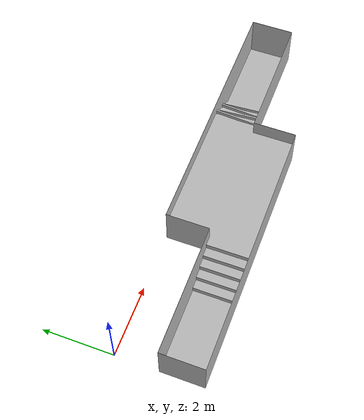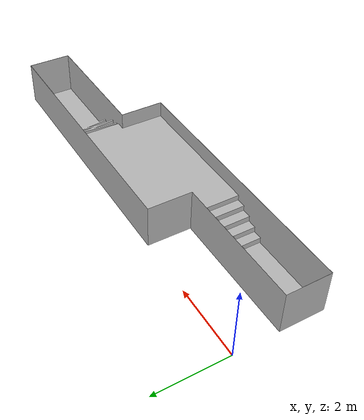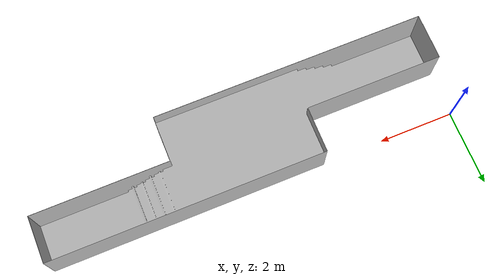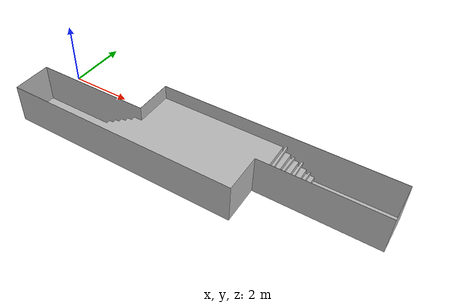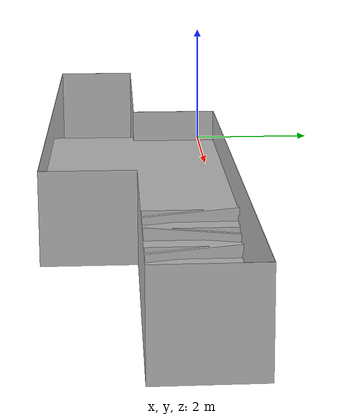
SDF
<?xml version='1.0'?>
<sdf version='1.6'>
    <world name="default">
      <include>
        <uri>model://sun</uri>
      </include>
      <model name="mob1">
      <pose>0 0 0  1.5708 0 0</pose>
      <static>true</static>
      <link name="body">
        <visual name="visual">
          <geometry>
            <mesh>
              <uri>file://mob1.stl</uri>
              <scale>0.001 0.001 0.001</scale>
            </mesh>
          </geometry>
        </visual>
        <collision name='base_link_collision'>
          <geometry>
            <mesh>
              <uri>file://mob2.stl</uri>
              <scale>0.001 0.001 0.001</scale>
            </mesh>
          </geometry>
        </collision>
      </link>
    </model>
    </world>
  </sdf>
